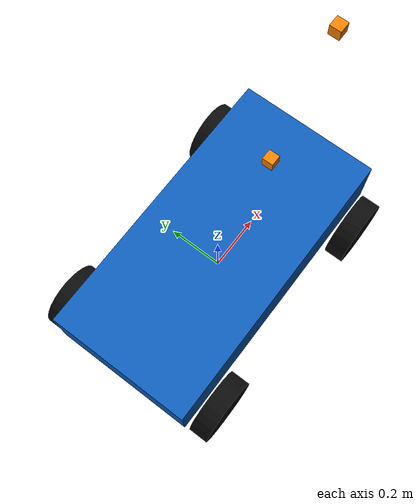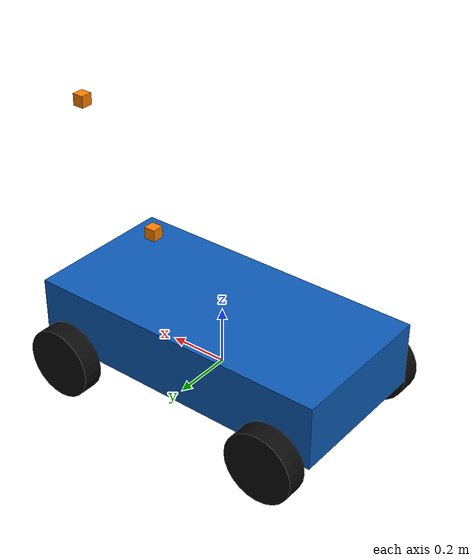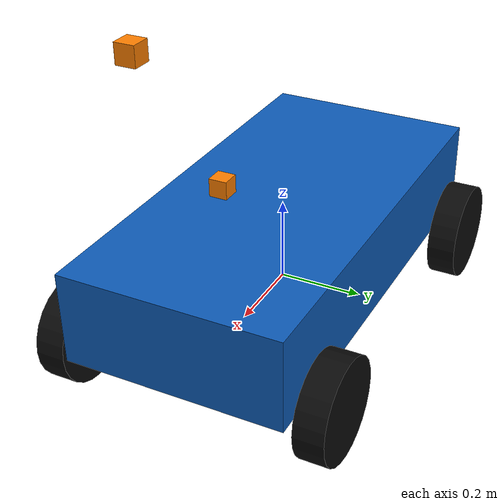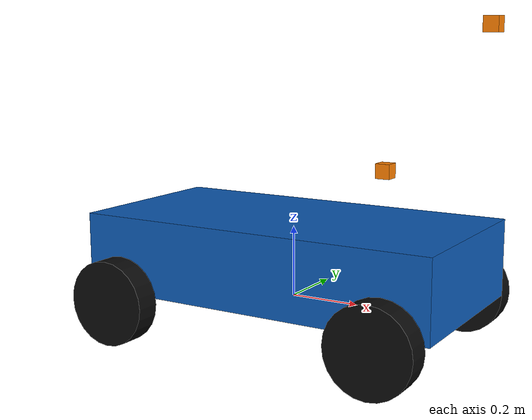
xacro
<?xml version="1.0"?>
<robot xmlns:xacro="http://www.ros.org/wiki/xacro" name="course_ackermann">
  <!-- SI; x forward, y left, z up. Dimensions from course kit v1-w08. -->
  <xacro:arg name="wheel_base" default="0.8"/>
  <xacro:arg name="track" default="0.62"/>
  <xacro:arg name="wheel_radius" default="0.12"/>
  <xacro:property name="wheel_base" value="$(arg wheel_base)"/>
  <xacro:property name="track" value="$(arg track)"/>
  <xacro:property name="radius" value="$(arg wheel_radius)"/>
  <xacro:property name="width" value="0.07"/>
  <xacro:macro name="inertia" params="mass ixx iyy izz">
    <inertial><mass value="${mass}"/><inertia ixx="${ixx}" iyy="${iyy}" izz="${izz}" ixy="0" ixz="0" iyz="0"/></inertial>
  </xacro:macro>
  <link name="base_link">
    <xacro:inertia mass="12.0" ixx="0.55" iyy="1.10" izz="1.40"/>
    <visual><origin xyz="0 0 0.12"/><geometry><box size="1.05 0.52 0.22"/></geometry><material name="blue"><color rgba="0.05 0.36 0.72 1"/></material></visual>
    <collision><origin xyz="0 0 0.12"/><geometry><box size="1.05 0.52 0.22"/></geometry></collision>
  </link>
  <xacro:macro name="sensor" params="name parent:=base_link">
    <link name="${name}_link">
      <xacro:inertia mass="0.033333333333" ixx="0.000333333333" iyy="0.000333333333" izz="0.000333333333"/>
      <visual><geometry><box size="0.04 0.04 0.04"/></geometry><material name="orange"><color rgba="1 0.5 0 1"/></material></visual>
      <collision><geometry><box size="0.04 0.04 0.04"/></geometry></collision>
    </link>
    <joint name="${name}_joint" type="fixed">
      <parent link="${parent}"/><child link="${name}_link"/>
      <origin xyz="0.28 0 0.38" rpy="0 0 0"/>
    </joint>
  </xacro:macro>
  <xacro:sensor name="camera"/>
  <xacro:sensor name="lidar" parent="camera_link"/>
  <xacro:sensor name="imu"/>
  <xacro:macro name="wheel" params="name parent joint_x joint_y">
    <link name="${name}_wheel">
      <xacro:inertia mass="0.8" ixx="${0.8*(3*radius*radius+width*width)/12}" iyy="${0.8*radius*radius/2}" izz="${0.8*(3*radius*radius+width*width)/12}"/>
      <visual><origin rpy="${pi/2} 0 0"/><geometry><cylinder radius="${radius}" length="${width}"/></geometry><material name="black"><color rgba="0.04 0.04 0.04 1"/></material></visual>
      <collision><origin rpy="${pi/2} 0 0"/><geometry><cylinder radius="${radius}" length="${width}"/></geometry></collision>
    </link>
    <joint name="${name}_wheel_joint" type="continuous">
      <parent link="${parent}"/><child link="${name}_wheel"/>
      <origin xyz="${joint_x} ${joint_y} 0"/><axis xyz="0 1 0"/>
    </joint>
  </xacro:macro>
  <xacro:macro name="front" params="side sign">
    <link name="front_${side}_knuckle"><xacro:inertia mass="0.2" ixx="0.001" iyy="0.001" izz="0.001"/></link>
    <joint name="front_${side}_steering_joint" type="revolute">
      <parent link="base_link"/><child link="front_${side}_knuckle"/>
      <origin xyz="${wheel_base/2} ${sign*track/2} 0"/><axis xyz="0 0 1"/>
      <limit lower="-0.55" upper="0.55" effort="25" velocity="2"/>
    </joint>
    <xacro:wheel name="front_${side}" parent="front_${side}_knuckle" joint_x="0" joint_y="0"/>
  </xacro:macro>
  <xacro:front side="left" sign="1"/>
  <xacro:front side="right" sign="-1"/>
  <xacro:wheel name="rear_left" parent="base_link" joint_x="${-wheel_base/2}" joint_y="${track/2}"/>
  <xacro:wheel name="rear_right" parent="base_link" joint_x="${-wheel_base/2}" joint_y="${-track/2}"/>
</robot>
